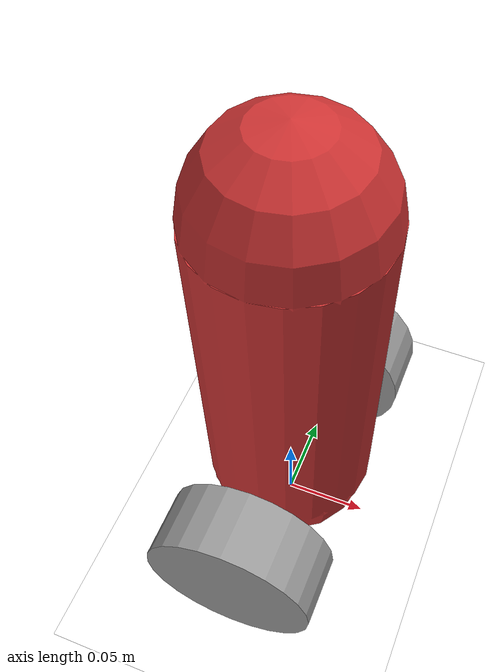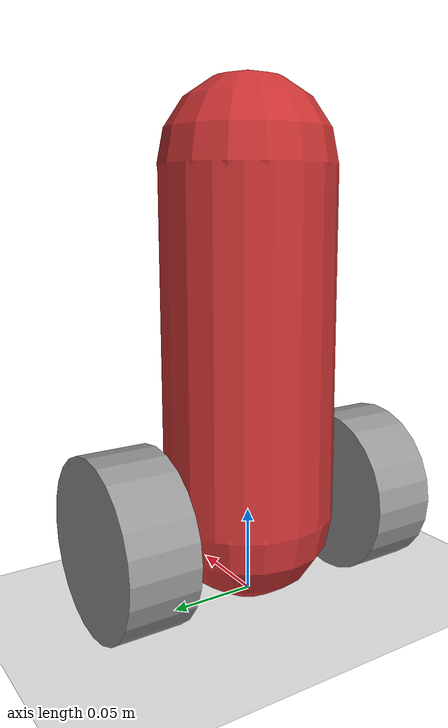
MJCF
<!-- ========================= robot.xml ========================= -->
<mujoco>
  <compiler angle="radian"/>

  <option gravity="0 0 -9.81">
    <flag contact="enable"/>
  </option>

  <default>
    <joint damping="0.1"/>
    <geom contype="1"
          conaffinity="1"
          friction="1.0 0.01 0.01"
          rgba="0.6 0.6 0.6 1"/>
  </default>

  <asset>
    <texture type="2d" name="groundplane" builtin="checker" rgb1="0.2 0.3 0.4" rgb2="0.1 0.2 0.3" width="500" height="500"/>
    <material name="ground" texture="groundplane" texrepeat="1 1" reflectance="0.2"/>

    <texture type="2d" name="wheel_texture" builtin="checker" mark="edge" rgb1="0.0 0.0 0.0" rgb2="1 1 1"
      markrgb="0.3 0.3 0.3" width="300" height="300"/>
    <material name="wheel_material" texture="wheel_texture" texuniform="true" texrepeat="5 5"/>
  </asset>

  <worldbody>
    <light pos="0 0 3" dir="0 0 -1" diffuse="0.8 0.8 0.8" specular="0.2 0.2 0.2"/>

    <geom name="floor"
          type="plane"
          size="5 5 0.1"
          material="ground"
          rgba="1 1 1 1"
          contype="1"
          conaffinity="1"/>

    <body name="chassis" pos="0 0 0.05">
      <joint type="free" name="root"/>
      <inertial pos="0 0.0 0.057" quat="0.707107 0 0 0.707107" mass="0.25" diaginertia="0.001311 0.0012568 0.000487"/>

      <geom type="capsule" fromto="0 0 0 0 0 0.2" size="0.05" rgba="0.8 0.2 0.2 1"/>
      <site name="chassis_top" pos="0 0 0.2"/>

      <body name="left_wheel" pos="0 0.08 0">
        <joint type="hinge" name="left_wheel_joint" axis="0 1 0" limited="false"/>
        <geom type="cylinder" size="0.05 0.02" zaxis="0 1 0" material="wheel_material"/>
      </body>

      <body name="right_wheel" pos="0 -0.08 0">
        <joint type="hinge" name="right_wheel_joint" axis="0 1 0" limited="false"/>
        <geom type="cylinder" size="0.05 0.02" zaxis="0 1 0" material="wheel_material"/>
      </body>
    </body>

  </worldbody>

  <actuator>
    <motor name="left_motor"
           joint="left_wheel_joint"
           gear="1"
           ctrlrange="-1.0 1.0"
           forcerange="-5.0 5.0"/>
    <motor name="right_motor"
           joint="right_wheel_joint"
           gear="1"
           ctrlrange="-1.0 1.0"
           forcerange="-5.0 5.0"/>
  </actuator>

  <sensor>
    <framepos objtype="site" objname="chassis_top"/>
    <framequat objtype="body" objname="chassis"/>
    <framelinvel objtype="body" objname="chassis"/>
    <frameangvel name="chassis_angle" objtype="body" objname="chassis"/>
    <jointpos joint="left_wheel_joint"/>
    <jointpos joint="right_wheel_joint"/>
  </sensor>

</mujoco>
